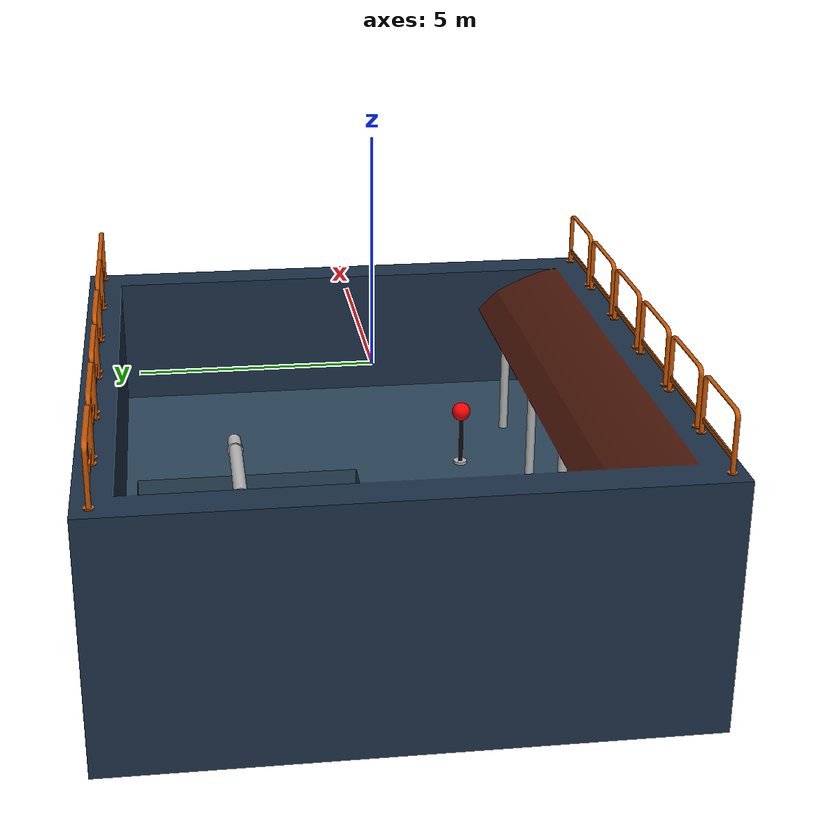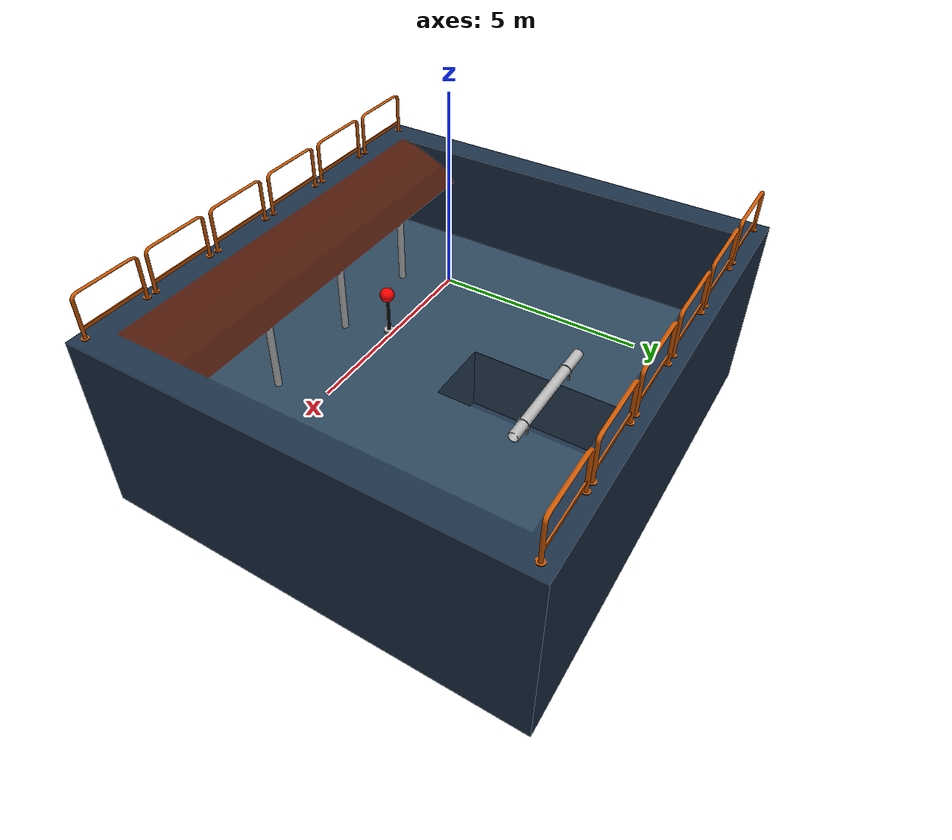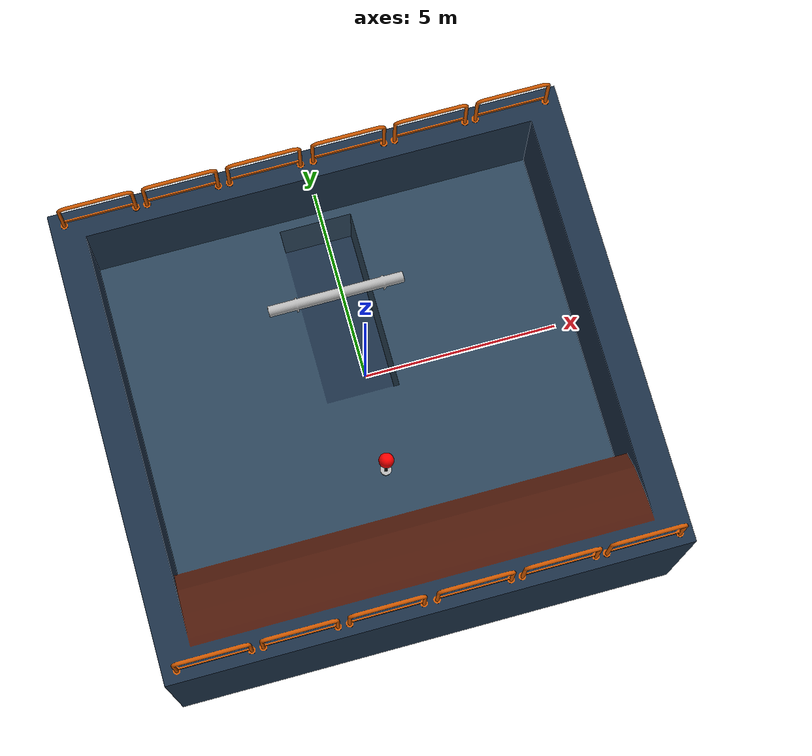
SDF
<?xml version="1.0" ?>
<sdf version='1.6'>
  <world name='default'>
    <light name='sun' type='directional'>
      <cast_shadows>1</cast_shadows>
      <pose frame=''>0 0 10 0 -0 0</pose>
      <diffuse>0.8 0.8 0.8 1</diffuse>
      <specular>0.2 0.2 0.2 1</specular>
      <attenuation>
        <range>1000</range>
        <constant>0.9</constant>
        <linear>0.01</linear>
        <quadratic>0.001</quadratic>
      </attenuation>
      <direction>-0.5 0.1 -0.9</direction>
    </light>

    <magnetic_field>6e-06 2.3e-05 -4.2e-05</magnetic_field>
    <atmosphere type='adiabatic'/>

    <physics name="default_physics" default="true" type="ode">
      <max_step_size>0.002</max_step_size>
      <real_time_factor>1</real_time_factor>
      <real_time_update_rate>500</real_time_update_rate>
    </physics>
    <scene>
      <ambient>0.01 0.01 0.01 1.0</ambient>
      <sky>
        <clouds>
          <speed>12</speed>
        </clouds>
      </sky>
      <shadows>1</shadows>
    </scene>

    <spherical_coordinates>
      <surface_model>EARTH_WGS84</surface_model>
      <latitude_deg>55.9</latitude_deg>
      <longitude_deg>-3.2</longitude_deg>
      <elevation>0</elevation>
      <heading_deg>0</heading_deg>
    </spherical_coordinates>

    <model name='wavetank'>
      <static>1</static>
      <link name='wavetank_link'>
        <visual name='seafloor'>
          <pose frame=''>0 0 -5 0 0 0</pose>
          <geometry>
            <mesh>
              <uri>model://wavetank/meshes/wavetank.dae</uri>
              <scale>1 1 1</scale>
            </mesh>
          </geometry>
        </visual>
        <collision name='seafloor'>
          <pose frame=''>0 0 -5 0 0 0</pose>
          <geometry>
            <mesh>
              <uri>model://wavetank/meshes/wavetank.dae</uri>
              <scale>1 1 1</scale>
            </mesh>
          </geometry>
          <max_contacts>10</max_contacts>
          <surface>
            <contact>
              <ode/>
            </contact>
            <bounce/>
            <friction>
              <torsional>
                <ode/>
              </torsional>
              <ode/>
            </friction>
          </surface>
        </collision>
        <self_collide>0</self_collide>
        <enable_wind>0</enable_wind>
        <kinematic>0</kinematic>
      </link>
      <pose frame=''>0 0 0 0 0 0</pose>
    </model>

    <include>
      <uri>model://rust_pipe</uri>
      <pose>0 3 -2.5 1.57 0 1.57</pose>
    </include>

    <include>
      <uri>model://ball</uri>
      <pose>0 -2 -2.5 0 0 0</pose>
    </include>

    <gui fullscreen='0'>
      <camera name='user_camera'>
        <pose frame=''>19.6015 -15.9684 23.4083 -0 0.741796 2.5962</pose>
        <view_controller>orbit</view_controller>
        <projection_type>perspective</projection_type>
      </camera>
    </gui>

    <plugin name="underwater_current_plugin" filename="libuuv_underwater_current_ros_plugin.so">
      <namespace>hydrodynamics</namespace>
      <constant_current>
        <topic>current_velocity</topic>
        <velocity>
          <mean>0</mean>
          <min>0</min>
          <max>5</max>
          <mu>0.0</mu>
          <noiseAmp>0.0</noiseAmp>
        </velocity>

        <horizontal_angle>
          <mean>0</mean>
          <min>-3.141592653589793238</min>
          <max>3.141592653589793238</max>
          <mu>0.0</mu>
          <noiseAmp>0.0</noiseAmp>
        </horizontal_angle>

        <vertical_angle>
          <mean>0</mean>
          <min>-3.141592653589793238</min>
          <max>3.141592653589793238</max>
          <mu>0.0</mu>
          <noiseAmp>0.0</noiseAmp>
        </vertical_angle>
      </constant_current>
    </plugin>

    <plugin name="sc_interface" filename="libuuv_sc_ros_interface_plugin.so"/>

  </world>
</sdf>

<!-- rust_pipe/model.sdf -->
<sdf version="1.5">
<model name="rust_pipe">
  <static>false</static>
  <link name="rust_pipe_link">

  <inertial>
    <inertia>
      <ixx>1</ixx>
      <ixy>0</ixy>
      <ixz>0</ixz>
      <iyy>1</iyy>
      <iyz>0</iyz>
      <izz>1</izz>
    </inertia>
    <mass>20</mass>
  </inertial>

  <visual name="rust_pipe">
    <pose>0 0 0 0 0 0</pose>
    <geometry>
      <mesh><uri>model://rust_pipe/meshes/RustPipe.obj</uri><scale>1 1 1</scale></mesh>
    </geometry>
  </visual>

  <collision name="rust_pipe">
    <pose>0 0 0 0 0 0</pose>
    <geometry>
      <mesh><uri>model://rust_pipe/meshes/RustPipe.obj</uri><scale>1 1 1</scale></mesh>
    </geometry>
  </collision>

  </link>
</model>
</sdf>

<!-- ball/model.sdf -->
<sdf version="1.5">
<model name="ball">
  <static>false</static>
  <link name="ball_link">

  <inertial>
    <mass>1</mass>
    <pose>0 0 0 0 0 0</pose>
  </inertial>

  <visual name="ball">
    <pose>0 0 0 0 0 0</pose>
    <geometry>
      <mesh><uri>ball/meshes/ball.dae</uri><scale>1 1 1</scale></mesh>
    </geometry>
  </visual>

  <collision name="ball">
    <pose>0 0 0 0 0 0</pose>
    <geometry>
      <mesh><uri>ball/meshes/ball.dae</uri><scale>1 1 1</scale></mesh>
    </geometry>
  </collision>

  </link>
</model>
</sdf>
